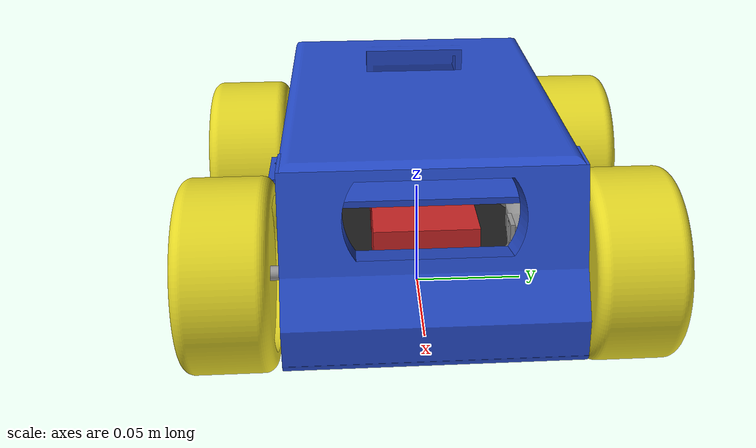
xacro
<?xml version="1.0" ?>
<robot name="Robot_Mecanum" xmlns:xacro="http://www.ros.org/wiki/xacro">

<link name="base_link">
  <inertial>
    <origin xyz="4.577524821338663e-06 0.0007996506694356291 0.02200000000000004" rpy="0 0 0"/>
    <mass value="0.24247947305060244"/>
    <inertia ixx="0.000249" iyy="0.000391" izz="0.00064" ixy="-0.0" iyz="0.0" ixz="-0.0"/>
  </inertial>
  <visual>
    <origin xyz="0 0 0" rpy="0 0 0"/>
    <geometry>
      <mesh filename="file://$(find Robot_Mecanum_description)/meshes/base_link.stl" scale="0.001 0.001 0.001"/>
    </geometry>
    <material name="black"/>
  </visual>
  <collision>
    <origin xyz="0 0 0" rpy="0 0 0"/>
    <geometry>
      <mesh filename="file://$(find Robot_Mecanum_description)/meshes/base_link.stl" scale="0.001 0.001 0.001"/>
    </geometry>
  </collision>
</link>

<link name="Uchwyt1_1">
  <inertial>
    <origin xyz="-3.1743554191540624e-06 -0.003228853201678865 0.009790845467155689" rpy="0 0 0"/>
    <mass value="0.006070351658499736"/>
    <inertia ixx="1e-06" iyy="1e-06" izz="0.0" ixy="-0.0" iyz="0.0" ixz="0.0"/>
  </inertial>
  <visual>
    <origin xyz="0.041097 -0.043 -0.023" rpy="0 0 0"/>
    <geometry>
      <mesh filename="file://$(find Robot_Mecanum_description)/meshes/Uchwyt1_1.stl" scale="0.001 0.001 0.001"/>
    </geometry>
    <material name="gray"/>
  </visual>
  <collision>
    <origin xyz="0.041097 -0.043 -0.023" rpy="0 0 0"/>
    <geometry>
      <mesh filename="file://$(find Robot_Mecanum_description)/meshes/Uchwyt1_1.stl" scale="0.001 0.001 0.001"/>
    </geometry>
  </collision>
</link>

<link name="Uchwyt2_1">
  <inertial>
    <origin xyz="3.0609228044570225e-06 0.003228853201678837 0.009790845407550992" rpy="0 0 0"/>
    <mass value="0.006070351658499741"/>
    <inertia ixx="1e-06" iyy="1e-06" izz="0.0" ixy="-0.0" iyz="-0.0" ixz="-0.0"/>
  </inertial>
  <visual>
    <origin xyz="0.041095 0.0415 -0.023" rpy="0 0 0"/>
    <geometry>
      <mesh filename="file://$(find Robot_Mecanum_description)/meshes/Uchwyt2_1.stl" scale="0.001 0.001 0.001"/>
    </geometry>
    <material name="gray"/>
  </visual>
  <collision>
    <origin xyz="0.041095 0.0415 -0.023" rpy="0 0 0"/>
    <geometry>
      <mesh filename="file://$(find Robot_Mecanum_description)/meshes/Uchwyt2_1.stl" scale="0.001 0.001 0.001"/>
    </geometry>
  </collision>
</link>

<link name="Uchwyt4_1">
  <inertial>
    <origin xyz="3.034271700647073e-06 0.0032288532016788787 0.009790845407551117" rpy="0 0 0"/>
    <mass value="0.006070351658499748"/>
    <inertia ixx="1e-06" iyy="1e-06" izz="0.0" ixy="-0.0" iyz="-0.0" ixz="-0.0"/>
  </inertial>
  <visual>
    <origin xyz="-0.0399 0.0415 -0.023" rpy="0 0 0"/>
    <geometry>
      <mesh filename="file://$(find Robot_Mecanum_description)/meshes/Uchwyt4_1.stl" scale="0.001 0.001 0.001"/>
    </geometry>
    <material name="gray"/>
  </visual>
  <collision>
    <origin xyz="-0.0399 0.0415 -0.023" rpy="0 0 0"/>
    <geometry>
      <mesh filename="file://$(find Robot_Mecanum_description)/meshes/Uchwyt4_1.stl" scale="0.001 0.001 0.001"/>
    </geometry>
  </collision>
</link>

<link name="Uchwyt3_1">
  <inertial>
    <origin xyz="-3.309799832242055e-06 -0.0032288532016787053 0.009790845407550972" rpy="0 0 0"/>
    <mass value="0.006070351658499724"/>
    <inertia ixx="1e-06" iyy="1e-06" izz="0.0" ixy="-0.0" iyz="0.0" ixz="0.0"/>
  </inertial>
  <visual>
    <origin xyz="-0.039898 -0.043 -0.023" rpy="0 0 0"/>
    <geometry>
      <mesh filename="file://$(find Robot_Mecanum_description)/meshes/Uchwyt3_1.stl" scale="0.001 0.001 0.001"/>
    </geometry>
    <material name="gray"/>
  </visual>
  <collision>
    <origin xyz="-0.039898 -0.043 -0.023" rpy="0 0 0"/>
    <geometry>
      <mesh filename="file://$(find Robot_Mecanum_description)/meshes/Uchwyt3_1.stl" scale="0.001 0.001 0.001"/>
    </geometry>
  </collision>
</link>

<link name="Silnik1_1">
  <inertial>
    <origin xyz="-0.0031191816336816544 0.00950000869866692 -0.008999995008126038" rpy="0 0 0"/>
    <mass value="0.025325764546616242"/>
    <inertia ixx="2e-06" iyy="9e-06" izz="9e-06" ixy="-0.0" iyz="0.0" ixz="-0.0"/>
  </inertial>
  <visual>
    <origin xyz="0.041099 -0.039 -0.049" rpy="0 0 0"/>
    <geometry>
      <mesh filename="file://$(find Robot_Mecanum_description)/meshes/Silnik1_1.stl" scale="0.001 0.001 0.001"/>
    </geometry>
    <material name="gray"/>
  </visual>
  <collision>
    <origin xyz="0.041099 -0.039 -0.049" rpy="0 0 0"/>
    <geometry>
      <mesh filename="file://$(find Robot_Mecanum_description)/meshes/Silnik1_1.stl" scale="0.001 0.001 0.001"/>
    </geometry>
  </collision>
</link>

<link name="Silnik2_1">
  <inertial>
    <origin xyz="-0.0031192637758870254 -0.009499991301333055 -0.008999995067730651" rpy="0 0 0"/>
    <mass value="0.025325764546616242"/>
    <inertia ixx="2e-06" iyy="9e-06" izz="9e-06" ixy="-0.0" iyz="0.0" ixz="-0.0"/>
  </inertial>
  <visual>
    <origin xyz="0.041094 0.0375 -0.049" rpy="0 0 0"/>
    <geometry>
      <mesh filename="file://$(find Robot_Mecanum_description)/meshes/Silnik2_1.stl" scale="0.001 0.001 0.001"/>
    </geometry>
    <material name="gray"/>
  </visual>
  <collision>
    <origin xyz="0.041094 0.0375 -0.049" rpy="0 0 0"/>
    <geometry>
      <mesh filename="file://$(find Robot_Mecanum_description)/meshes/Silnik2_1.stl" scale="0.001 0.001 0.001"/>
    </geometry>
  </collision>
</link>

<link name="Silnik3_1">
  <inertial>
    <origin xyz="0.003120014898859255 0.009499991301333152 -0.008999995067730644" rpy="0 0 0"/>
    <mass value="0.025325764546616253"/>
    <inertia ixx="2e-06" iyy="9e-06" izz="9e-06" ixy="-0.0" iyz="-0.0" ixz="0.0"/>
  </inertial>
  <visual>
    <origin xyz="-0.039896 -0.039 -0.049" rpy="0 0 0"/>
    <geometry>
      <mesh filename="file://$(find Robot_Mecanum_description)/meshes/Silnik3_1.stl" scale="0.001 0.001 0.001"/>
    </geometry>
    <material name="gray"/>
  </visual>
  <collision>
    <origin xyz="-0.039896 -0.039 -0.049" rpy="0 0 0"/>
    <geometry>
      <mesh filename="file://$(find Robot_Mecanum_description)/meshes/Silnik3_1.stl" scale="0.001 0.001 0.001"/>
    </geometry>
  </collision>
</link>

<link name="Silnik4_1">
  <inertial>
    <origin xyz="0.0031200415499631415 -0.00950000869866692 -0.008999995067730644" rpy="0 0 0"/>
    <mass value="0.025325764546616253"/>
    <inertia ixx="2e-06" iyy="9e-06" izz="9e-06" ixy="-0.0" iyz="-0.0" ixz="0.0"/>
  </inertial>
  <visual>
    <origin xyz="-0.039901 0.0375 -0.049" rpy="0 0 0"/>
    <geometry>
      <mesh filename="file://$(find Robot_Mecanum_description)/meshes/Silnik4_1.stl" scale="0.001 0.001 0.001"/>
    </geometry>
    <material name="gray"/>
  </visual>
  <collision>
    <origin xyz="-0.039901 0.0375 -0.049" rpy="0 0 0"/>
    <geometry>
      <mesh filename="file://$(find Robot_Mecanum_description)/meshes/Silnik4_1.stl" scale="0.001 0.001 0.001"/>
    </geometry>
  </collision>
</link>

<link name="L298N2_1">
  <inertial>
    <origin xyz="0.0656911877807432 1.7447707953454402e-07 -0.007999999999999965" rpy="0 0 0"/>
    <mass value="0.4768874999999997"/>
    <inertia ixx="0.000116" iyy="0.000116" izz="0.000161" ixy="0.0" iyz="-0.0" ixz="-0.0"/>
  </inertial>
  <visual>
    <origin xyz="0.035691 -0.000802 -0.046" rpy="0 0 0"/>
    <geometry>
      <mesh filename="file://$(find Robot_Mecanum_description)/meshes/L298N2_1.stl" scale="0.001 0.001 0.001"/>
    </geometry>
    <material name="red"/>
  </visual>
  <collision>
    <origin xyz="0.035691 -0.000802 -0.046" rpy="0 0 0"/>
    <geometry>
      <mesh filename="file://$(find Robot_Mecanum_description)/meshes/L298N2_1.stl" scale="0.001 0.001 0.001"/>
    </geometry>
  </collision>
</link>

<link name="L298N1_1">
  <inertial>
    <origin xyz="0.005691187780743217 1.744770795392061e-07 -0.007999999999999965" rpy="0 0 0"/>
    <mass value="0.4768874999999998"/>
    <inertia ixx="0.000116" iyy="0.000116" izz="0.000161" ixy="0.0" iyz="0.0" ixz="0.0"/>
  </inertial>
  <visual>
    <origin xyz="0.035691 -0.000802 -0.046" rpy="0 0 0"/>
    <geometry>
      <mesh filename="file://$(find Robot_Mecanum_description)/meshes/L298N1_1.stl" scale="0.001 0.001 0.001"/>
    </geometry>
    <material name="red"/>
  </visual>
  <collision>
    <origin xyz="0.035691 -0.000802 -0.046" rpy="0 0 0"/>
    <geometry>
      <mesh filename="file://$(find Robot_Mecanum_description)/meshes/L298N1_1.stl" scale="0.001 0.001 0.001"/>
    </geometry>
  </collision>
</link>

<link name="Stelarz_1">
  <inertial>
    <origin xyz="-0.05181081268270672 -2.8158429765618516e-05 0.02171900655487808" rpy="0 0 0"/>
    <mass value="1.86907819831891"/>
    <inertia ixx="0.003472" iyy="0.014035" izz="0.016003" ixy="4e-06" iyz="2e-06" ixz="-0.000894"/>
  </inertial>
  <visual>
    <origin xyz="-0.069605 -0.000802 -0.022" rpy="0 0 0"/>
    <geometry>
      <mesh filename="file://$(find Robot_Mecanum_description)/meshes/Stelarz_1.stl" scale="0.001 0.001 0.001"/>
    </geometry>
    <material name="blue"/>
  </visual>
  <collision>
    <origin xyz="-0.069605 -0.000802 -0.022" rpy="0 0 0"/>
    <geometry>
      <mesh filename="file://$(find Robot_Mecanum_description)/meshes/Stelarz_1.stl" scale="0.001 0.001 0.001"/>
    </geometry>
  </collision>
</link>

<link name="Pokrywa_1">
  <inertial>
    <origin xyz="0.05651394799725071 0.040804989460773225 0.0014995080756887713" rpy="0 0 0"/>
    <mass value="0.37401588766271837"/>
    <inertia ixx="0.000476" iyy="0.000517" izz="0.000993" ixy="0.0" iyz="0.0" ixz="0.0"/>
  </inertial>
  <visual>
    <origin xyz="0.085691 0.04 -0.055821" rpy="0 0 0"/>
    <geometry>
      <mesh filename="file://$(find Robot_Mecanum_description)/meshes/Pokrywa_1.stl" scale="0.001 0.001 0.001"/>
    </geometry>
    <material name="blue"/>
  </visual>
  <collision>
    <origin xyz="0.085691 0.04 -0.055821" rpy="0 0 0"/>
    <geometry>
      <mesh filename="file://$(find Robot_Mecanum_description)/meshes/Pokrywa_1.stl" scale="0.001 0.001 0.001"/>
    </geometry>
  </collision>
</link>

<link name="Kolo2_1">
  <inertial>
    <origin xyz="4.0221259182959823e-07 -0.01576125497762243 5.551115123125783e-17" rpy="0 0 0"/>
    <mass value="1.306481563794594"/>
    <inertia ixx="0.000659" iyy="0.001075" izz="0.000659" ixy="0.0" iyz="-0.0" ixz="-0.0"/>
  </inertial>
  <visual>
    <origin xyz="0.062094 0.0645 -0.04" rpy="0 0 0"/>
    <geometry>
      <mesh filename="file://$(find Robot_Mecanum_description)/meshes/Kolo2_1.stl" scale="0.001 0.001 0.001"/>
    </geometry>
    <material name="yellow"/>
  </visual>
  <collision>
    <origin xyz="0.062094 0.0645 -0.04" rpy="0 0 0"/>
    <geometry>
      <mesh filename="file://$(find Robot_Mecanum_description)/meshes/Kolo2_1.stl" scale="0.001 0.001 0.001"/>
    </geometry>
  </collision>
</link>

<link name="Kolo3_1">
  <inertial>
    <origin xyz="3.4891038197537583e-07 0.015761254977622513 6.245004513516506e-17" rpy="0 0 0"/>
    <mass value="1.3064815637945943"/>
    <inertia ixx="0.000659" iyy="0.001075" izz="0.000659" ixy="-0.0" iyz="0.0" ixz="-0.0"/>
  </inertial>
  <visual>
    <origin xyz="-0.060896 -0.066 -0.04" rpy="0 0 0"/>
    <geometry>
      <mesh filename="file://$(find Robot_Mecanum_description)/meshes/Kolo3_1.stl" scale="0.001 0.001 0.001"/>
    </geometry>
    <material name="yellow"/>
  </visual>
  <collision>
    <origin xyz="-0.060896 -0.066 -0.04" rpy="0 0 0"/>
    <geometry>
      <mesh filename="file://$(find Robot_Mecanum_description)/meshes/Kolo3_1.stl" scale="0.001 0.001 0.001"/>
    </geometry>
  </collision>
</link>

<link name="Kolo4_1">
  <inertial>
    <origin xyz="3.755614843004018e-07 -0.01576125497762243 6.938893903907228e-17" rpy="0 0 0"/>
    <mass value="1.3064815637945943"/>
    <inertia ixx="0.000659" iyy="0.001075" izz="0.000659" ixy="-0.0" iyz="-0.0" ixz="0.0"/>
  </inertial>
  <visual>
    <origin xyz="-0.060901 0.0645 -0.04" rpy="0 0 0"/>
    <geometry>
      <mesh filename="file://$(find Robot_Mecanum_description)/meshes/Kolo4_1.stl" scale="0.001 0.001 0.001"/>
    </geometry>
    <material name="yellow"/>
  </visual>
  <collision>
    <origin xyz="-0.060901 0.0645 -0.04" rpy="0 0 0"/>
    <geometry>
      <mesh filename="file://$(find Robot_Mecanum_description)/meshes/Kolo4_1.stl" scale="0.001 0.001 0.001"/>
    </geometry>
  </collision>
</link>

<link name="Kolo1_1">
  <inertial>
    <origin xyz="4.843547956115413e-07 0.015761254977622402 5.960467536203495e-11" rpy="0 0 0"/>
    <mass value="1.3064815637945943"/>
    <inertia ixx="0.000659" iyy="0.001075" izz="0.000659" ixy="0.0" iyz="0.0" ixz="-0.0"/>
  </inertial>
  <visual>
    <origin xyz="0.062099 -0.066 -0.04" rpy="0 0 0"/>
    <geometry>
      <mesh filename="file://$(find Robot_Mecanum_description)/meshes/Kolo1_1.stl" scale="0.001 0.001 0.001"/>
    </geometry>
    <material name="yellow"/>
  </visual>
  <collision>
    <origin xyz="0.062099 -0.066 -0.04" rpy="0 0 0"/>
    <geometry>
      <mesh filename="file://$(find Robot_Mecanum_description)/meshes/Kolo1_1.stl" scale="0.001 0.001 0.001"/>
    </geometry>
  </collision>
</link>

<link name="Dach_1">
  <inertial>
    <origin xyz="0.04914843524315145 -4.920853241970839e-07 0.022374287225597173" rpy="0 0 0"/>
    <mass value="1.0991056320474606"/>
    <inertia ixx="0.001896" iyy="0.002974" izz="0.004541" ixy="0.0" iyz="0.0" ixz="-0.000215"/>
  </inertial>
  <visual>
    <origin xyz="0.095691 -0.000802 -0.058821" rpy="0 0 0"/>
    <geometry>
      <mesh filename="file://$(find Robot_Mecanum_description)/meshes/Dach_1.stl" scale="0.001 0.001 0.001"/>
    </geometry>
    <material name="blue"/>
  </visual>
  <collision>
    <origin xyz="0.095691 -0.000802 -0.058821" rpy="0 0 0"/>
    <geometry>
      <mesh filename="file://$(find Robot_Mecanum_description)/meshes/Dach_1.stl" scale="0.001 0.001 0.001"/>
    </geometry>
  </collision>
</link>

<link name="dummy"/>

<joint name="dummy_joint" type="fixed">
<parent link="dummy"/>
<child link="base_link"/>
</joint>

<joint name="Sztywne 21" type="fixed">
  <origin xyz="-0.041097 0.043 0.023" rpy="0 0 0"/>
  <parent link="base_link"/>
  <child link="Uchwyt1_1"/>
</joint>

<joint name="Sztywne 22" type="fixed">
  <origin xyz="-0.041095 -0.0415 0.023" rpy="0 0 0"/>
  <parent link="base_link"/>
  <child link="Uchwyt2_1"/>
</joint>

<joint name="Sztywne 23" type="fixed">
  <origin xyz="0.0399 -0.0415 0.023" rpy="0 0 0"/>
  <parent link="base_link"/>
  <child link="Uchwyt4_1"/>
</joint>

<joint name="Sztywne 24" type="fixed">
  <origin xyz="0.039898 0.043 0.023" rpy="0 0 0"/>
  <parent link="base_link"/>
  <child link="Uchwyt3_1"/>
</joint>

<joint name="Sztywne 25" type="fixed">
  <origin xyz="-2e-06 -0.004 0.026" rpy="0 0 0"/>
  <parent link="Uchwyt1_1"/>
  <child link="Silnik1_1"/>
</joint>

<joint name="Sztywne 26" type="fixed">
  <origin xyz="1e-06 0.004 0.026" rpy="0 0 0"/>
  <parent link="Uchwyt2_1"/>
  <child link="Silnik2_1"/>
</joint>

<joint name="Sztywne 27" type="fixed">
  <origin xyz="-2e-06 -0.004 0.026" rpy="0 0 0"/>
  <parent link="Uchwyt3_1"/>
  <child link="Silnik3_1"/>
</joint>

<joint name="Sztywne 28" type="fixed">
  <origin xyz="1e-06 0.004 0.026" rpy="0 0 0"/>
  <parent link="Uchwyt4_1"/>
  <child link="Silnik4_1"/>
</joint>

<joint name="Sztywne 29" type="fixed">
  <origin xyz="-0.035691 0.000802 0.046" rpy="0 0 0"/>
  <parent link="base_link"/>
  <child link="L298N2_1"/>
</joint>

<joint name="Sztywne 30" type="fixed">
  <origin xyz="-0.035691 0.000802 0.046" rpy="0 0 0"/>
  <parent link="base_link"/>
  <child link="L298N1_1"/>
</joint>

<joint name="Sztywne 31" type="fixed">
  <origin xyz="0.069605 0.000802 0.022" rpy="0 0 0"/>
  <parent link="base_link"/>
  <child link="Stelarz_1"/>
</joint>

<joint name="Sztywne 32" type="fixed">
  <origin xyz="-0.155296 -0.040802 0.033821" rpy="0 0 0"/>
  <parent link="Stelarz_1"/>
  <child link="Pokrywa_1"/>
</joint>

<joint name="Obrot 35" type="continuous">
  <origin xyz="-0.021 -0.027 -0.009" rpy="0 0 0"/>
  <parent link="Silnik2_1"/>
  <child link="Kolo2_1"/>
  <axis xyz="0.0 1.0 0.0"/>
</joint>

<joint name="Obrot 36" type="continuous">
  <origin xyz="0.021 0.027 -0.009" rpy="0 0 0"/>
  <parent link="Silnik3_1"/>
  <child link="Kolo3_1"/>
  <axis xyz="-0.0 1.0 0.0"/>
</joint>

<joint name="Obrot 37" type="continuous">
  <origin xyz="0.021 -0.027 -0.009" rpy="0 0 0"/>
  <parent link="Silnik4_1"/>
  <child link="Kolo4_1"/>
  <axis xyz="0.0 1.0 0.0"/>
</joint>

<joint name="Obrot 38" type="continuous">
  <origin xyz="-0.021 0.027 -0.009" rpy="0 0 0"/>
  <parent link="Silnik1_1"/>
  <child link="Kolo1_1"/>
  <axis xyz="-0.0 1.0 -0.0"/>
</joint>

<joint name="Sztywne 39" type="fixed">
  <origin xyz="-0.01 0.040802 0.003" rpy="0 0 0"/>
  <parent link="Pokrywa_1"/>
  <child link="Dach_1"/>
</joint>

</robot>
